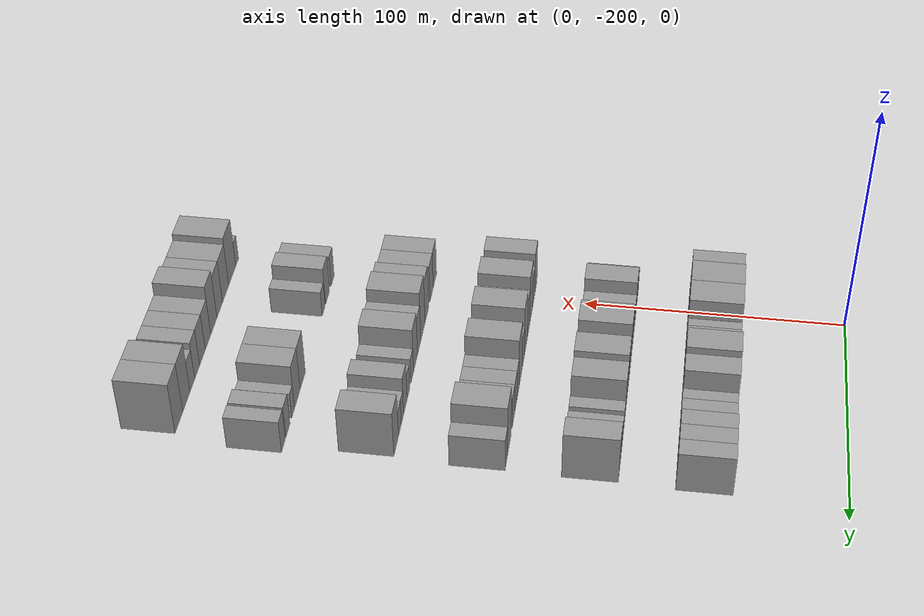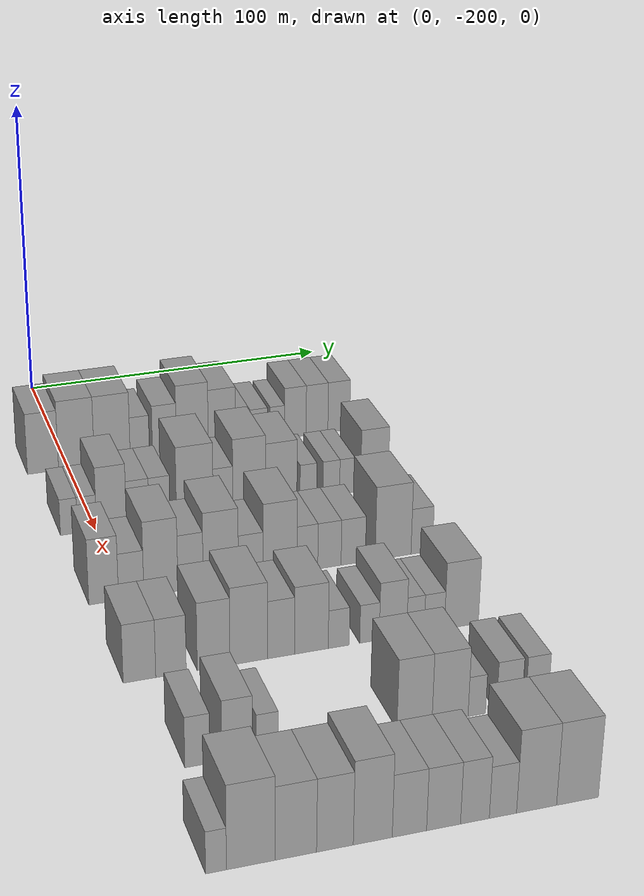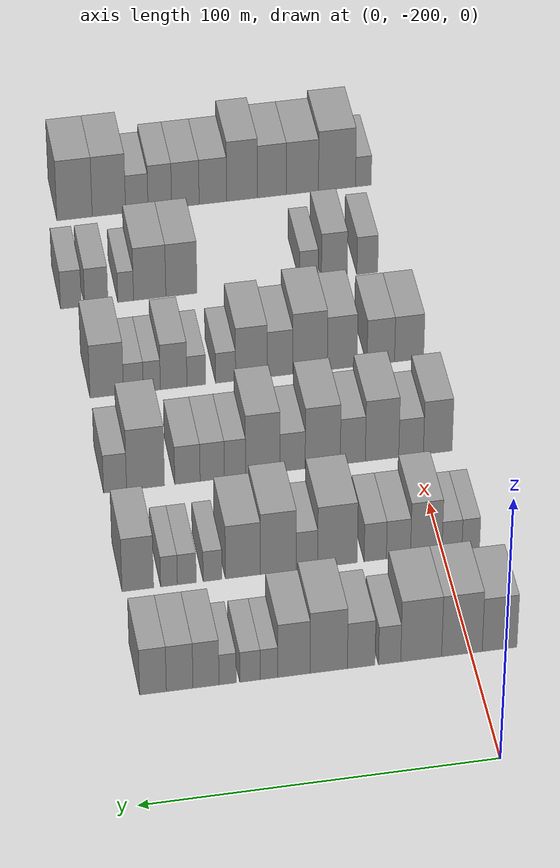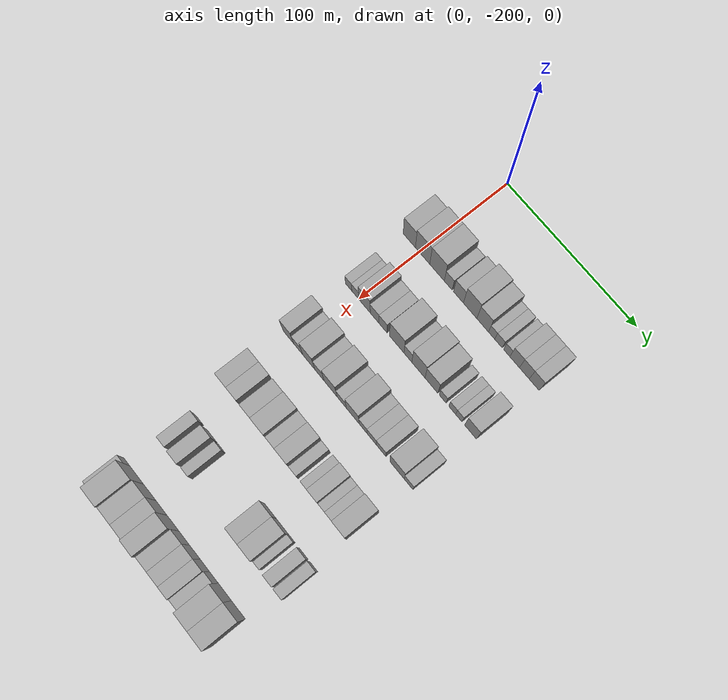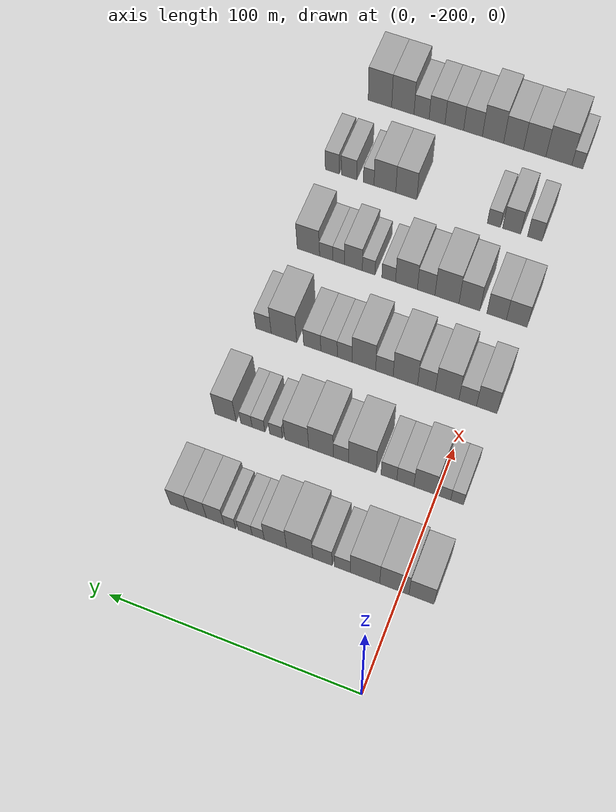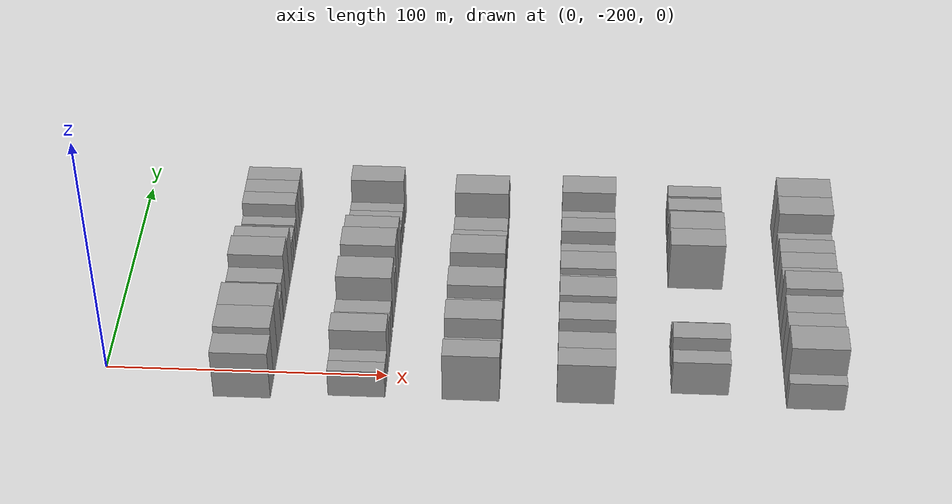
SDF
<sdf version="1.6">
 <world name="default">
  <model name="building_43">
   <static>1</static>
   <pose>50.0000 -208.1110 0 0.000000 0.000000 0.000000</pose>
   <link name="link">
    <pose>0 0 10.50 0 0 0</pose>
    <collision name="collision"><geometry><box><size>20.0000 9.9102 21.0000</size></box></geometry></collision>
    <visual name="visual">
     <cast_shadows>0</cast_shadows>
     <geometry><box><size>20.0000 9.9102 21.0000</size></box></geometry>
     <material>
      <script>
       <uri>model://grey_wall/materials/scripts</uri>
       <uri>model://grey_wall/materials/textures</uri>
       <name>vrc/grey_wall</name>
      </script>
     </material>
    </visual>
   </link>
  </model>
  <model name="building_44">
   <static>1</static>
   <pose>50.0000 -197.3954 0 0.000000 0.000000 0.000000</pose>
   <link name="link">
    <pose>0 0 12.00 0 0 0</pose>
    <collision name="collision"><geometry><box><size>20.0000 11.5211 24.0000</size></box></geometry></collision>
    <visual name="visual">
     <cast_shadows>0</cast_shadows>
     <geometry><box><size>20.0000 11.5211 24.0000</size></box></geometry>
     <material>
      <script>
       <uri>model://grey_wall/materials/scripts</uri>
       <uri>model://grey_wall/materials/textures</uri>
       <name>vrc/grey_wall</name>
      </script>
     </material>
    </visual>
   </link>
  </model>
  <model name="building_45">
   <static>1</static>
   <pose>50.0000 -185.8268 0 0.000000 0.000000 0.000000</pose>
   <link name="link">
    <pose>0 0 12.00 0 0 0</pose>
    <collision name="collision"><geometry><box><size>20.0000 11.6160 24.0000</size></box></geometry></collision>
    <visual name="visual">
     <cast_shadows>0</cast_shadows>
     <geometry><box><size>20.0000 11.6160 24.0000</size></box></geometry>
     <material>
      <script>
       <uri>model://grey_wall/materials/scripts</uri>
       <uri>model://grey_wall/materials/textures</uri>
       <name>vrc/grey_wall</name>
      </script>
     </material>
    </visual>
   </link>
  </model>
  <model name="building_46">
   <static>1</static>
   <pose>50.0000 -176.8797 0 0.000000 0.000000 0.000000</pose>
   <link name="link">
    <pose>0 0 7.50 0 0 0</pose>
    <collision name="collision"><geometry><box><size>20.0000 6.2783 15.0000</size></box></geometry></collision>
    <visual name="visual">
     <cast_shadows>0</cast_shadows>
     <geometry><box><size>20.0000 6.2783 15.0000</size></box></geometry>
     <material>
      <script>
       <uri>model://grey_wall/materials/scripts</uri>
       <uri>model://grey_wall/materials/textures</uri>
       <name>vrc/grey_wall</name>
      </script>
     </material>
    </visual>
   </link>
  </model>
  <model name="building_47">
   <static>1</static>
   <pose>50.0000 -168.8229 0 0.000000 0.000000 0.000000</pose>
   <link name="link">
    <pose>0 0 9.00 0 0 0</pose>
    <collision name="collision"><geometry><box><size>20.0000 7.8353 18.0000</size></box></geometry></collision>
    <visual name="visual">
     <cast_shadows>0</cast_shadows>
     <geometry><box><size>20.0000 7.8353 18.0000</size></box></geometry>
     <material>
      <script>
       <uri>model://grey_wall/materials/scripts</uri>
       <uri>model://grey_wall/materials/textures</uri>
       <name>vrc/grey_wall</name>
      </script>
     </material>
    </visual>
   </link>
  </model>
  <model name="building_48">
   <static>1</static>
   <pose>50.0000 -159.6403 0 0.000000 0.000000 0.000000</pose>
   <link name="link">
    <pose>0 0 12.00 0 0 0</pose>
    <collision name="collision"><geometry><box><size>20.0000 10.5299 24.0000</size></box></geometry></collision>
    <visual name="visual">
     <cast_shadows>0</cast_shadows>
     <geometry><box><size>20.0000 10.5299 24.0000</size></box></geometry>
     <material>
      <script>
       <uri>model://grey_wall/materials/scripts</uri>
       <uri>model://grey_wall/materials/textures</uri>
       <name>vrc/grey_wall</name>
      </script>
     </material>
    </visual>
   </link>
  </model>
  <model name="building_49">
   <static>1</static>
   <pose>50.0000 -149.8336 0 0.000000 0.000000 0.000000</pose>
   <link name="link">
    <pose>0 0 10.50 0 0 0</pose>
    <collision name="collision"><geometry><box><size>20.0000 9.0834 21.0000</size></box></geometry></collision>
    <visual name="visual">
     <cast_shadows>0</cast_shadows>
     <geometry><box><size>20.0000 9.0834 21.0000</size></box></geometry>
     <material>
      <script>
       <uri>model://grey_wall/materials/scripts</uri>
       <uri>model://grey_wall/materials/textures</uri>
       <name>vrc/grey_wall</name>
      </script>
     </material>
    </visual>
   </link>
  </model>
  <model name="building_50">
   <static>1</static>
   <pose>50.0000 -142.8377 0 0.000000 0.000000 0.000000</pose>
   <link name="link">
    <pose>0 0 6.00 0 0 0</pose>
    <collision name="collision"><geometry><box><size>20.0000 4.9084 12.0000</size></box></geometry></collision>
    <visual name="visual">
     <cast_shadows>0</cast_shadows>
     <geometry><box><size>20.0000 4.9084 12.0000</size></box></geometry>
     <material>
      <script>
       <uri>model://grey_wall/materials/scripts</uri>
       <uri>model://grey_wall/materials/textures</uri>
       <name>vrc/grey_wall</name>
      </script>
     </material>
    </visual>
   </link>
  </model>
  <model name="building_51">
   <static>1</static>
   <pose>50.0000 -137.5032 0 0.000000 0.000000 0.000000</pose>
   <link name="link">
    <pose>0 0 6.00 0 0 0</pose>
    <collision name="collision"><geometry><box><size>20.0000 5.7607 12.0000</size></box></geometry></collision>
    <visual name="visual">
     <cast_shadows>0</cast_shadows>
     <geometry><box><size>20.0000 5.7607 12.0000</size></box></geometry>
     <material>
      <script>
       <uri>model://grey_wall/materials/scripts</uri>
       <uri>model://grey_wall/materials/textures</uri>
       <name>vrc/grey_wall</name>
      </script>
     </material>
    </visual>
   </link>
  </model>
  <model name="building_52">
   <static>1</static>
   <pose>50.0000 -131.1997 0 0.000000 0.000000 0.000000</pose>
   <link name="link">
    <pose>0 0 6.00 0 0 0</pose>
    <collision name="collision"><geometry><box><size>20.0000 4.8462 12.0000</size></box></geometry></collision>
    <visual name="visual">
     <cast_shadows>0</cast_shadows>
     <geometry><box><size>20.0000 4.8462 12.0000</size></box></geometry>
     <material>
      <script>
       <uri>model://grey_wall/materials/scripts</uri>
       <uri>model://grey_wall/materials/textures</uri>
       <name>vrc/grey_wall</name>
      </script>
     </material>
    </visual>
   </link>
  </model>
  <model name="building_53">
   <static>1</static>
   <pose>50.0000 -125.1361 0 0.000000 0.000000 0.000000</pose>
   <link name="link">
    <pose>0 0 9.00 0 0 0</pose>
    <collision name="collision"><geometry><box><size>20.0000 7.2810 18.0000</size></box></geometry></collision>
    <visual name="visual">
     <cast_shadows>0</cast_shadows>
     <geometry><box><size>20.0000 7.2810 18.0000</size></box></geometry>
     <material>
      <script>
       <uri>model://grey_wall/materials/scripts</uri>
       <uri>model://grey_wall/materials/textures</uri>
       <name>vrc/grey_wall</name>
      </script>
     </material>
    </visual>
   </link>
  </model>
  <model name="building_54">
   <static>1</static>
   <pose>50.0000 -117.7696 0 0.000000 0.000000 0.000000</pose>
   <link name="link">
    <pose>0 0 9.00 0 0 0</pose>
    <collision name="collision"><geometry><box><size>20.0000 7.4519 18.0000</size></box></geometry></collision>
    <visual name="visual">
     <cast_shadows>0</cast_shadows>
     <geometry><box><size>20.0000 7.4519 18.0000</size></box></geometry>
     <material>
      <script>
       <uri>model://grey_wall/materials/scripts</uri>
       <uri>model://grey_wall/materials/textures</uri>
       <name>vrc/grey_wall</name>
      </script>
     </material>
    </visual>
   </link>
  </model>
  <model name="building_55">
   <static>1</static>
   <pose>50.0000 -110.3080 0 0.000000 0.000000 0.000000</pose>
   <link name="link">
    <pose>0 0 9.00 0 0 0</pose>
    <collision name="collision"><geometry><box><size>20.0000 7.4714 18.0000</size></box></geometry></collision>
    <visual name="visual">
     <cast_shadows>0</cast_shadows>
     <geometry><box><size>20.0000 7.4714 18.0000</size></box></geometry>
     <material>
      <script>
       <uri>model://grey_wall/materials/scripts</uri>
       <uri>model://grey_wall/materials/textures</uri>
       <name>vrc/grey_wall</name>
      </script>
     </material>
    </visual>
   </link>
  </model>
  <model name="building_187">
   <static>1</static>
   <pose>90.0000 -208.1421 0 0.000000 0.000000 0.000000</pose>
   <link name="link">
    <pose>0 0 6.00 0 0 0</pose>
    <collision name="collision"><geometry><box><size>20.0000 5.1441 12.0000</size></box></geometry></collision>
    <visual name="visual">
     <cast_shadows>0</cast_shadows>
     <geometry><box><size>20.0000 5.1441 12.0000</size></box></geometry>
     <material>
      <script>
       <uri>model://grey_wall/materials/scripts</uri>
       <uri>model://grey_wall/materials/textures</uri>
       <name>vrc/grey_wall</name>
      </script>
     </material>
    </visual>
   </link>
  </model>
  <model name="building_188">
   <static>1</static>
   <pose>90.0000 -202.6643 0 0.000000 0.000000 0.000000</pose>
   <link name="link">
    <pose>0 0 6.00 0 0 0</pose>
    <collision name="collision"><geometry><box><size>20.0000 5.8114 12.0000</size></box></geometry></collision>
    <visual name="visual">
     <cast_shadows>0</cast_shadows>
     <geometry><box><size>20.0000 5.8114 12.0000</size></box></geometry>
     <material>
      <script>
       <uri>model://grey_wall/materials/scripts</uri>
       <uri>model://grey_wall/materials/textures</uri>
       <name>vrc/grey_wall</name>
      </script>
     </material>
    </visual>
   </link>
  </model>
  <model name="building_189">
   <static>1</static>
   <pose>90.0000 -195.1871 0 0.000000 0.000000 0.000000</pose>
   <link name="link">
    <pose>0 0 10.50 0 0 0</pose>
    <collision name="collision"><geometry><box><size>20.0000 9.1430 21.0000</size></box></geometry></collision>
    <visual name="visual">
     <cast_shadows>0</cast_shadows>
     <geometry><box><size>20.0000 9.1430 21.0000</size></box></geometry>
     <material>
      <script>
       <uri>model://grey_wall/materials/scripts</uri>
       <uri>model://grey_wall/materials/textures</uri>
       <name>vrc/grey_wall</name>
      </script>
     </material>
    </visual>
   </link>
  </model>
  <model name="building_190">
   <static>1</static>
   <pose>90.0000 -187.1275 0 0.000000 0.000000 0.000000</pose>
   <link name="link">
    <pose>0 0 7.50 0 0 0</pose>
    <collision name="collision"><geometry><box><size>20.0000 6.9762 15.0000</size></box></geometry></collision>
    <visual name="visual">
     <cast_shadows>0</cast_shadows>
     <geometry><box><size>20.0000 6.9762 15.0000</size></box></geometry>
     <material>
      <script>
       <uri>model://grey_wall/materials/scripts</uri>
       <uri>model://grey_wall/materials/textures</uri>
       <name>vrc/grey_wall</name>
      </script>
     </material>
    </visual>
   </link>
  </model>
  <model name="building_191">
   <static>1</static>
   <pose>90.0000 -180.4109 0 0.000000 0.000000 0.000000</pose>
   <link name="link">
    <pose>0 0 7.50 0 0 0</pose>
    <collision name="collision"><geometry><box><size>20.0000 6.4570 15.0000</size></box></geometry></collision>
    <visual name="visual">
     <cast_shadows>0</cast_shadows>
     <geometry><box><size>20.0000 6.4570 15.0000</size></box></geometry>
     <material>
      <script>
       <uri>model://grey_wall/materials/scripts</uri>
       <uri>model://grey_wall/materials/textures</uri>
       <name>vrc/grey_wall</name>
      </script>
     </material>
    </visual>
   </link>
  </model>
  <model name="building_192">
   <static>1</static>
   <pose>90.0000 -169.4578 0 0.000000 0.000000 0.000000</pose>
   <link name="link">
    <pose>0 0 12.00 0 0 0</pose>
    <collision name="collision"><geometry><box><size>20.0000 11.4491 24.0000</size></box></geometry></collision>
    <visual name="visual">
     <cast_shadows>0</cast_shadows>
     <geometry><box><size>20.0000 11.4491 24.0000</size></box></geometry>
     <material>
      <script>
       <uri>model://grey_wall/materials/scripts</uri>
       <uri>model://grey_wall/materials/textures</uri>
       <name>vrc/grey_wall</name>
      </script>
     </material>
    </visual>
   </link>
  </model>
  <model name="building_193">
   <static>1</static>
   <pose>90.0000 -160.6461 0 0.000000 0.000000 0.000000</pose>
   <link name="link">
    <pose>0 0 7.50 0 0 0</pose>
    <collision name="collision"><geometry><box><size>20.0000 6.1744 15.0000</size></box></geometry></collision>
    <visual name="visual">
     <cast_shadows>0</cast_shadows>
     <geometry><box><size>20.0000 6.1744 15.0000</size></box></geometry>
     <material>
      <script>
       <uri>model://grey_wall/materials/scripts</uri>
       <uri>model://grey_wall/materials/textures</uri>
       <name>vrc/grey_wall</name>
      </script>
     </material>
    </visual>
   </link>
  </model>
  <model name="building_194">
   <static>1</static>
   <pose>90.0000 -152.4023 0 0.000000 0.000000 0.000000</pose>
   <link name="link">
    <pose>0 0 12.00 0 0 0</pose>
    <collision name="collision"><geometry><box><size>20.0000 10.3132 24.0000</size></box></geometry></collision>
    <visual name="visual">
     <cast_shadows>0</cast_shadows>
     <geometry><box><size>20.0000 10.3132 24.0000</size></box></geometry>
     <material>
      <script>
       <uri>model://grey_wall/materials/scripts</uri>
       <uri>model://grey_wall/materials/textures</uri>
       <name>vrc/grey_wall</name>
      </script>
     </material>
    </visual>
   </link>
  </model>
  <model name="building_195">
   <static>1</static>
   <pose>90.0000 -142.2316 0 0.000000 0.000000 0.000000</pose>
   <link name="link">
    <pose>0 0 10.50 0 0 0</pose>
    <collision name="collision"><geometry><box><size>20.0000 10.0282 21.0000</size></box></geometry></collision>
    <visual name="visual">
     <cast_shadows>0</cast_shadows>
     <geometry><box><size>20.0000 10.0282 21.0000</size></box></geometry>
     <material>
      <script>
       <uri>model://grey_wall/materials/scripts</uri>
       <uri>model://grey_wall/materials/textures</uri>
       <name>vrc/grey_wall</name>
      </script>
     </material>
    </visual>
   </link>
  </model>
  <model name="building_196">
   <static>1</static>
   <pose>90.0000 -133.5268 0 0.000000 0.000000 0.000000</pose>
   <link name="link">
    <pose>0 0 6.00 0 0 0</pose>
    <collision name="collision"><geometry><box><size>20.0000 5.3814 12.0000</size></box></geometry></collision>
    <visual name="visual">
     <cast_shadows>0</cast_shadows>
     <geometry><box><size>20.0000 5.3814 12.0000</size></box></geometry>
     <material>
      <script>
       <uri>model://grey_wall/materials/scripts</uri>
       <uri>model://grey_wall/materials/textures</uri>
       <name>vrc/grey_wall</name>
      </script>
     </material>
    </visual>
   </link>
  </model>
  <model name="building_197">
   <static>1</static>
   <pose>90.0000 -126.1355 0 0.000000 0.000000 0.000000</pose>
   <link name="link">
    <pose>0 0 6.00 0 0 0</pose>
    <collision name="collision"><geometry><box><size>20.0000 5.4012 12.0000</size></box></geometry></collision>
    <visual name="visual">
     <cast_shadows>0</cast_shadows>
     <geometry><box><size>20.0000 5.4012 12.0000</size></box></geometry>
     <material>
      <script>
       <uri>model://grey_wall/materials/scripts</uri>
       <uri>model://grey_wall/materials/textures</uri>
       <name>vrc/grey_wall</name>
      </script>
     </material>
    </visual>
   </link>
  </model>
  <model name="building_198">
   <static>1</static>
   <pose>90.0000 -121.0316 0 0.000000 0.000000 0.000000</pose>
   <link name="link">
    <pose>0 0 6.00 0 0 0</pose>
    <collision name="collision"><geometry><box><size>20.0000 4.8067 12.0000</size></box></geometry></collision>
    <visual name="visual">
     <cast_shadows>0</cast_shadows>
     <geometry><box><size>20.0000 4.8067 12.0000</size></box></geometry>
     <material>
      <script>
       <uri>model://grey_wall/materials/scripts</uri>
       <uri>model://grey_wall/materials/textures</uri>
       <name>vrc/grey_wall</name>
      </script>
     </material>
    </visual>
   </link>
  </model>
  <model name="building_199">
   <static>1</static>
   <pose>90.0000 -112.1156 0 0.000000 0.000000 0.000000</pose>
   <link name="link">
    <pose>0 0 10.50 0 0 0</pose>
    <collision name="collision"><geometry><box><size>20.0000 9.0252 21.0000</size></box></geometry></collision>
    <visual name="visual">
     <cast_shadows>0</cast_shadows>
     <geometry><box><size>20.0000 9.0252 21.0000</size></box></geometry>
     <material>
      <script>
       <uri>model://grey_wall/materials/scripts</uri>
       <uri>model://grey_wall/materials/textures</uri>
       <name>vrc/grey_wall</name>
      </script>
     </material>
    </visual>
   </link>
  </model>
  <model name="building_324">
   <static>1</static>
   <pose>130.0000 -206.5401 0 0.000000 0.000000 0.000000</pose>
   <link name="link">
    <pose>0 0 10.50 0 0 0</pose>
    <collision name="collision"><geometry><box><size>20.0000 8.5243 21.0000</size></box></geometry></collision>
    <visual name="visual">
     <cast_shadows>0</cast_shadows>
     <geometry><box><size>20.0000 8.5243 21.0000</size></box></geometry>
     <material>
      <script>
       <uri>model://grey_wall/materials/scripts</uri>
       <uri>model://grey_wall/materials/textures</uri>
       <name>vrc/grey_wall</name>
      </script>
     </material>
    </visual>
   </link>
  </model>
  <model name="building_325">
   <static>1</static>
   <pose>130.0000 -198.6207 0 0.000000 0.000000 0.000000</pose>
   <link name="link">
    <pose>0 0 7.50 0 0 0</pose>
    <collision name="collision"><geometry><box><size>20.0000 7.3146 15.0000</size></box></geometry></collision>
    <visual name="visual">
     <cast_shadows>0</cast_shadows>
     <geometry><box><size>20.0000 7.3146 15.0000</size></box></geometry>
     <material>
      <script>
       <uri>model://grey_wall/materials/scripts</uri>
       <uri>model://grey_wall/materials/textures</uri>
       <name>vrc/grey_wall</name>
      </script>
     </material>
    </visual>
   </link>
  </model>
  <model name="building_326">
   <static>1</static>
   <pose>130.0000 -190.0081 0 0.000000 0.000000 0.000000</pose>
   <link name="link">
    <pose>0 0 12.00 0 0 0</pose>
    <collision name="collision"><geometry><box><size>20.0000 9.9106 24.0000</size></box></geometry></collision>
    <visual name="visual">
     <cast_shadows>0</cast_shadows>
     <geometry><box><size>20.0000 9.9106 24.0000</size></box></geometry>
     <material>
      <script>
       <uri>model://grey_wall/materials/scripts</uri>
       <uri>model://grey_wall/materials/textures</uri>
       <name>vrc/grey_wall</name>
      </script>
     </material>
    </visual>
   </link>
  </model>
  <model name="building_327">
   <static>1</static>
   <pose>130.0000 -181.3514 0 0.000000 0.000000 0.000000</pose>
   <link name="link">
    <pose>0 0 9.00 0 0 0</pose>
    <collision name="collision"><geometry><box><size>20.0000 7.4029 18.0000</size></box></geometry></collision>
    <visual name="visual">
     <cast_shadows>0</cast_shadows>
     <geometry><box><size>20.0000 7.4029 18.0000</size></box></geometry>
     <material>
      <script>
       <uri>model://grey_wall/materials/scripts</uri>
       <uri>model://grey_wall/materials/textures</uri>
       <name>vrc/grey_wall</name>
      </script>
     </material>
    </visual>
   </link>
  </model>
  <model name="building_328">
   <static>1</static>
   <pose>130.0000 -172.4671 0 0.000000 0.000000 0.000000</pose>
   <link name="link">
    <pose>0 0 12.00 0 0 0</pose>
    <collision name="collision"><geometry><box><size>20.0000 10.3655 24.0000</size></box></geometry></collision>
    <visual name="visual">
     <cast_shadows>0</cast_shadows>
     <geometry><box><size>20.0000 10.3655 24.0000</size></box></geometry>
     <material>
      <script>
       <uri>model://grey_wall/materials/scripts</uri>
       <uri>model://grey_wall/materials/textures</uri>
       <name>vrc/grey_wall</name>
      </script>
     </material>
    </visual>
   </link>
  </model>
  <model name="building_329">
   <static>1</static>
   <pose>130.0000 -163.5837 0 0.000000 0.000000 0.000000</pose>
   <link name="link">
    <pose>0 0 7.50 0 0 0</pose>
    <collision name="collision"><geometry><box><size>20.0000 7.4013 15.0000</size></box></geometry></collision>
    <visual name="visual">
     <cast_shadows>0</cast_shadows>
     <geometry><box><size>20.0000 7.4013 15.0000</size></box></geometry>
     <material>
      <script>
       <uri>model://grey_wall/materials/scripts</uri>
       <uri>model://grey_wall/materials/textures</uri>
       <name>vrc/grey_wall</name>
      </script>
     </material>
    </visual>
   </link>
  </model>
  <model name="building_330">
   <static>1</static>
   <pose>130.0000 -154.8156 0 0.000000 0.000000 0.000000</pose>
   <link name="link">
    <pose>0 0 12.00 0 0 0</pose>
    <collision name="collision"><geometry><box><size>20.0000 10.1349 24.0000</size></box></geometry></collision>
    <visual name="visual">
     <cast_shadows>0</cast_shadows>
     <geometry><box><size>20.0000 10.1349 24.0000</size></box></geometry>
     <material>
      <script>
       <uri>model://grey_wall/materials/scripts</uri>
       <uri>model://grey_wall/materials/textures</uri>
       <name>vrc/grey_wall</name>
      </script>
     </material>
    </visual>
   </link>
  </model>
  <model name="building_331">
   <static>1</static>
   <pose>130.0000 -146.6207 0 0.000000 0.000000 0.000000</pose>
   <link name="link">
    <pose>0 0 7.50 0 0 0</pose>
    <collision name="collision"><geometry><box><size>20.0000 6.2551 15.0000</size></box></geometry></collision>
    <visual name="visual">
     <cast_shadows>0</cast_shadows>
     <geometry><box><size>20.0000 6.2551 15.0000</size></box></geometry>
     <material>
      <script>
       <uri>model://grey_wall/materials/scripts</uri>
       <uri>model://grey_wall/materials/textures</uri>
       <name>vrc/grey_wall</name>
      </script>
     </material>
    </visual>
   </link>
  </model>
  <model name="building_332">
   <static>1</static>
   <pose>130.0000 -139.9472 0 0.000000 0.000000 0.000000</pose>
   <link name="link">
    <pose>0 0 7.50 0 0 0</pose>
    <collision name="collision"><geometry><box><size>20.0000 7.0919 15.0000</size></box></geometry></collision>
    <visual name="visual">
     <cast_shadows>0</cast_shadows>
     <geometry><box><size>20.0000 7.0919 15.0000</size></box></geometry>
     <material>
      <script>
       <uri>model://grey_wall/materials/scripts</uri>
       <uri>model://grey_wall/materials/textures</uri>
       <name>vrc/grey_wall</name>
      </script>
     </material>
    </visual>
   </link>
  </model>
  <model name="building_333">
   <static>1</static>
   <pose>130.0000 -132.6904 0 0.000000 0.000000 0.000000</pose>
   <link name="link">
    <pose>0 0 7.50 0 0 0</pose>
    <collision name="collision"><geometry><box><size>20.0000 7.4218 15.0000</size></box></geometry></collision>
    <visual name="visual">
     <cast_shadows>0</cast_shadows>
     <geometry><box><size>20.0000 7.4218 15.0000</size></box></geometry>
     <material>
      <script>
       <uri>model://grey_wall/materials/scripts</uri>
       <uri>model://grey_wall/materials/textures</uri>
       <name>vrc/grey_wall</name>
      </script>
     </material>
    </visual>
   </link>
  </model>
  <model name="building_334">
   <static>1</static>
   <pose>130.0000 -120.4313 0 0.000000 0.000000 0.000000</pose>
   <link name="link">
    <pose>0 0 12.00 0 0 0</pose>
    <collision name="collision"><geometry><box><size>20.0000 11.0963 24.0000</size></box></geometry></collision>
    <visual name="visual">
     <cast_shadows>0</cast_shadows>
     <geometry><box><size>20.0000 11.0963 24.0000</size></box></geometry>
     <material>
      <script>
       <uri>model://grey_wall/materials/scripts</uri>
       <uri>model://grey_wall/materials/textures</uri>
       <name>vrc/grey_wall</name>
      </script>
     </material>
    </visual>
   </link>
  </model>
  <model name="building_335">
   <static>1</static>
   <pose>130.0000 -111.5220 0 0.000000 0.000000 0.000000</pose>
   <link name="link">
    <pose>0 0 7.50 0 0 0</pose>
    <collision name="collision"><geometry><box><size>20.0000 6.7223 15.0000</size></box></geometry></collision>
    <visual name="visual">
     <cast_shadows>0</cast_shadows>
     <geometry><box><size>20.0000 6.7223 15.0000</size></box></geometry>
     <material>
      <script>
       <uri>model://grey_wall/materials/scripts</uri>
       <uri>model://grey_wall/materials/textures</uri>
       <name>vrc/grey_wall</name>
      </script>
     </material>
    </visual>
   </link>
  </model>
  <model name="building_463">
   <static>1</static>
   <pose>170.0000 -205.8518 0 0.000000 0.000000 0.000000</pose>
   <link name="link">
    <pose>0 0 9.00 0 0 0</pose>
    <collision name="collision"><geometry><box><size>20.0000 8.8298 18.0000</size></box></geometry></collision>
    <visual name="visual">
     <cast_shadows>0</cast_shadows>
     <geometry><box><size>20.0000 8.8298 18.0000</size></box></geometry>
     <material>
      <script>
       <uri>model://grey_wall/materials/scripts</uri>
       <uri>model://grey_wall/materials/textures</uri>
       <name>vrc/grey_wall</name>
      </script>
     </material>
    </visual>
   </link>
  </model>
  <model name="building_464">
   <static>1</static>
   <pose>170.0000 -197.2720 0 0.000000 0.000000 0.000000</pose>
   <link name="link">
    <pose>0 0 9.00 0 0 0</pose>
    <collision name="collision"><geometry><box><size>20.0000 8.3299 18.0000</size></box></geometry></collision>
    <visual name="visual">
     <cast_shadows>0</cast_shadows>
     <geometry><box><size>20.0000 8.3299 18.0000</size></box></geometry>
     <material>
      <script>
       <uri>model://grey_wall/materials/scripts</uri>
       <uri>model://grey_wall/materials/textures</uri>
       <name>vrc/grey_wall</name>
      </script>
     </material>
    </visual>
   </link>
  </model>
  <model name="building_465">
   <static>1</static>
   <pose>170.0000 -185.5988 0 0.000000 0.000000 0.000000</pose>
   <link name="link">
    <pose>0 0 10.50 0 0 0</pose>
    <collision name="collision"><geometry><box><size>20.0000 9.0165 21.0000</size></box></geometry></collision>
    <visual name="visual">
     <cast_shadows>0</cast_shadows>
     <geometry><box><size>20.0000 9.0165 21.0000</size></box></geometry>
     <material>
      <script>
       <uri>model://grey_wall/materials/scripts</uri>
       <uri>model://grey_wall/materials/textures</uri>
       <name>vrc/grey_wall</name>
      </script>
     </material>
    </visual>
   </link>
  </model>
  <model name="building_466">
   <static>1</static>
   <pose>170.0000 -175.8891 0 0.000000 0.000000 0.000000</pose>
   <link name="link">
    <pose>0 0 12.00 0 0 0</pose>
    <collision name="collision"><geometry><box><size>20.0000 10.4028 24.0000</size></box></geometry></collision>
    <visual name="visual">
     <cast_shadows>0</cast_shadows>
     <geometry><box><size>20.0000 10.4028 24.0000</size></box></geometry>
     <material>
      <script>
       <uri>model://grey_wall/materials/scripts</uri>
       <uri>model://grey_wall/materials/textures</uri>
       <name>vrc/grey_wall</name>
      </script>
     </material>
    </visual>
   </link>
  </model>
  <model name="building_467">
   <static>1</static>
   <pose>170.0000 -166.8759 0 0.000000 0.000000 0.000000</pose>
   <link name="link">
    <pose>0 0 9.00 0 0 0</pose>
    <collision name="collision"><geometry><box><size>20.0000 7.6237 18.0000</size></box></geometry></collision>
    <visual name="visual">
     <cast_shadows>0</cast_shadows>
     <geometry><box><size>20.0000 7.6237 18.0000</size></box></geometry>
     <material>
      <script>
       <uri>model://grey_wall/materials/scripts</uri>
       <uri>model://grey_wall/materials/textures</uri>
       <name>vrc/grey_wall</name>
      </script>
     </material>
    </visual>
   </link>
  </model>
  <model name="building_468">
   <static>1</static>
   <pose>170.0000 -158.2862 0 0.000000 0.000000 0.000000</pose>
   <link name="link">
    <pose>0 0 10.50 0 0 0</pose>
    <collision name="collision"><geometry><box><size>20.0000 9.5557 21.0000</size></box></geometry></collision>
    <visual name="visual">
     <cast_shadows>0</cast_shadows>
     <geometry><box><size>20.0000 9.5557 21.0000</size></box></geometry>
     <material>
      <script>
       <uri>model://grey_wall/materials/scripts</uri>
       <uri>model://grey_wall/materials/textures</uri>
       <name>vrc/grey_wall</name>
      </script>
     </material>
    </visual>
   </link>
  </model>
  <model name="building_469">
   <static>1</static>
   <pose>170.0000 -150.5120 0 0.000000 0.000000 0.000000</pose>
   <link name="link">
    <pose>0 0 6.00 0 0 0</pose>
    <collision name="collision"><geometry><box><size>20.0000 5.9926 12.0000</size></box></geometry></collision>
    <visual name="visual">
     <cast_shadows>0</cast_shadows>
     <geometry><box><size>20.0000 5.9926 12.0000</size></box></geometry>
     <material>
      <script>
       <uri>model://grey_wall/materials/scripts</uri>
       <uri>model://grey_wall/materials/textures</uri>
       <name>vrc/grey_wall</name>
      </script>
     </material>
    </visual>
   </link>
  </model>
  <model name="building_470">
   <static>1</static>
   <pose>170.0000 -141.7155 0 0.000000 0.000000 0.000000</pose>
   <link name="link">
    <pose>0 0 6.00 0 0 0</pose>
    <collision name="collision"><geometry><box><size>20.0000 5.6005 12.0000</size></box></geometry></collision>
    <visual name="visual">
     <cast_shadows>0</cast_shadows>
     <geometry><box><size>20.0000 5.6005 12.0000</size></box></geometry>
     <material>
      <script>
       <uri>model://grey_wall/materials/scripts</uri>
       <uri>model://grey_wall/materials/textures</uri>
       <name>vrc/grey_wall</name>
      </script>
     </material>
    </visual>
   </link>
  </model>
  <model name="building_471">
   <static>1</static>
   <pose>170.0000 -134.9388 0 0.000000 0.000000 0.000000</pose>
   <link name="link">
    <pose>0 0 9.00 0 0 0</pose>
    <collision name="collision"><geometry><box><size>20.0000 7.9529 18.0000</size></box></geometry></collision>
    <visual name="visual">
     <cast_shadows>0</cast_shadows>
     <geometry><box><size>20.0000 7.9529 18.0000</size></box></geometry>
     <material>
      <script>
       <uri>model://grey_wall/materials/scripts</uri>
       <uri>model://grey_wall/materials/textures</uri>
       <name>vrc/grey_wall</name>
      </script>
     </material>
    </visual>
   </link>
  </model>
  <model name="building_472">
   <static>1</static>
   <pose>170.0000 -128.4115 0 0.000000 0.000000 0.000000</pose>
   <link name="link">
    <pose>0 0 6.00 0 0 0</pose>
    <collision name="collision"><geometry><box><size>20.0000 5.1018 12.0000</size></box></geometry></collision>
    <visual name="visual">
     <cast_shadows>0</cast_shadows>
     <geometry><box><size>20.0000 5.1018 12.0000</size></box></geometry>
     <material>
      <script>
       <uri>model://grey_wall/materials/scripts</uri>
       <uri>model://grey_wall/materials/textures</uri>
       <name>vrc/grey_wall</name>
      </script>
     </material>
    </visual>
   </link>
  </model>
  <model name="building_473">
   <static>1</static>
   <pose>170.0000 -122.9006 0 0.000000 0.000000 0.000000</pose>
   <link name="link">
    <pose>0 0 6.00 0 0 0</pose>
    <collision name="collision"><geometry><box><size>20.0000 5.9199 12.0000</size></box></geometry></collision>
    <visual name="visual">
     <cast_shadows>0</cast_shadows>
     <geometry><box><size>20.0000 5.9199 12.0000</size></box></geometry>
     <material>
      <script>
       <uri>model://grey_wall/materials/scripts</uri>
       <uri>model://grey_wall/materials/textures</uri>
       <name>vrc/grey_wall</name>
      </script>
     </material>
    </visual>
   </link>
  </model>
  <model name="building_474">
   <static>1</static>
   <pose>170.0000 -114.9412 0 0.000000 0.000000 0.000000</pose>
   <link name="link">
    <pose>0 0 10.50 0 0 0</pose>
    <collision name="collision"><geometry><box><size>20.0000 9.9989 21.0000</size></box></geometry></collision>
    <visual name="visual">
     <cast_shadows>0</cast_shadows>
     <geometry><box><size>20.0000 9.9989 21.0000</size></box></geometry>
     <material>
      <script>
       <uri>model://grey_wall/materials/scripts</uri>
       <uri>model://grey_wall/materials/textures</uri>
       <name>vrc/grey_wall</name>
      </script>
     </material>
    </visual>
   </link>
  </model>
  <model name="building_605">
   <static>1</static>
   <pose>210.0000 -200.7367 0 0.000000 0.000000 0.000000</pose>
   <link name="link">
    <pose>0 0 7.50 0 0 0</pose>
    <collision name="collision"><geometry><box><size>20.0000 6.4362 15.0000</size></box></geometry></collision>
    <visual name="visual">
     <cast_shadows>0</cast_shadows>
     <geometry><box><size>20.0000 6.4362 15.0000</size></box></geometry>
     <material>
      <script>
       <uri>model://grey_wall/materials/scripts</uri>
       <uri>model://grey_wall/materials/textures</uri>
       <name>vrc/grey_wall</name>
      </script>
     </material>
    </visual>
   </link>
  </model>
  <model name="building_606">
   <static>1</static>
   <pose>210.0000 -190.5467 0 0.000000 0.000000 0.000000</pose>
   <link name="link">
    <pose>0 0 9.00 0 0 0</pose>
    <collision name="collision"><geometry><box><size>20.0000 7.9437 18.0000</size></box></geometry></collision>
    <visual name="visual">
     <cast_shadows>0</cast_shadows>
     <geometry><box><size>20.0000 7.9437 18.0000</size></box></geometry>
     <material>
      <script>
       <uri>model://grey_wall/materials/scripts</uri>
       <uri>model://grey_wall/materials/textures</uri>
       <name>vrc/grey_wall</name>
      </script>
     </material>
    </visual>
   </link>
  </model>
  <model name="building_607">
   <static>1</static>
   <pose>210.0000 -182.7085 0 0.000000 0.000000 0.000000</pose>
   <link name="link">
    <pose>0 0 6.00 0 0 0</pose>
    <collision name="collision"><geometry><box><size>20.0000 5.7328 12.0000</size></box></geometry></collision>
    <visual name="visual">
     <cast_shadows>0</cast_shadows>
     <geometry><box><size>20.0000 5.7328 12.0000</size></box></geometry>
     <material>
      <script>
       <uri>model://grey_wall/materials/scripts</uri>
       <uri>model://grey_wall/materials/textures</uri>
       <name>vrc/grey_wall</name>
      </script>
     </material>
    </visual>
   </link>
  </model>
  <model name="building_608">
   <static>1</static>
   <pose>210.0000 -143.5787 0 0.000000 0.000000 0.000000</pose>
   <link name="link">
    <pose>0 0 10.50 0 0 0</pose>
    <collision name="collision"><geometry><box><size>20.0000 9.5090 21.0000</size></box></geometry></collision>
    <visual name="visual">
     <cast_shadows>0</cast_shadows>
     <geometry><box><size>20.0000 9.5090 21.0000</size></box></geometry>
     <material>
      <script>
       <uri>model://grey_wall/materials/scripts</uri>
       <uri>model://grey_wall/materials/textures</uri>
       <name>vrc/grey_wall</name>
      </script>
     </material>
    </visual>
   </link>
  </model>
  <model name="building_609">
   <static>1</static>
   <pose>210.0000 -133.8915 0 0.000000 0.000000 0.000000</pose>
   <link name="link">
    <pose>0 0 10.50 0 0 0</pose>
    <collision name="collision"><geometry><box><size>20.0000 9.8653 21.0000</size></box></geometry></collision>
    <visual name="visual">
     <cast_shadows>0</cast_shadows>
     <geometry><box><size>20.0000 9.8653 21.0000</size></box></geometry>
     <material>
      <script>
       <uri>model://grey_wall/materials/scripts</uri>
       <uri>model://grey_wall/materials/textures</uri>
       <name>vrc/grey_wall</name>
      </script>
     </material>
    </visual>
   </link>
  </model>
  <model name="building_610">
   <static>1</static>
   <pose>210.0000 -126.5502 0 0.000000 0.000000 0.000000</pose>
   <link name="link">
    <pose>0 0 6.00 0 0 0</pose>
    <collision name="collision"><geometry><box><size>20.0000 4.8173 12.0000</size></box></geometry></collision>
    <visual name="visual">
     <cast_shadows>0</cast_shadows>
     <geometry><box><size>20.0000 4.8173 12.0000</size></box></geometry>
     <material>
      <script>
       <uri>model://grey_wall/materials/scripts</uri>
       <uri>model://grey_wall/materials/textures</uri>
       <name>vrc/grey_wall</name>
      </script>
     </material>
    </visual>
   </link>
  </model>
  <model name="building_611">
   <static>1</static>
   <pose>210.0000 -117.5949 0 0.000000 0.000000 0.000000</pose>
   <link name="link">
    <pose>0 0 7.50 0 0 0</pose>
    <collision name="collision"><geometry><box><size>20.0000 7.0931 15.0000</size></box></geometry></collision>
    <visual name="visual">
     <cast_shadows>0</cast_shadows>
     <geometry><box><size>20.0000 7.0931 15.0000</size></box></geometry>
     <material>
      <script>
       <uri>model://grey_wall/materials/scripts</uri>
       <uri>model://grey_wall/materials/textures</uri>
       <name>vrc/grey_wall</name>
      </script>
     </material>
    </visual>
   </link>
  </model>
  <model name="building_612">
   <static>1</static>
   <pose>210.0000 -109.8763 0 0.000000 0.000000 0.000000</pose>
   <link name="link">
    <pose>0 0 7.50 0 0 0</pose>
    <collision name="collision"><geometry><box><size>20.0000 6.3442 15.0000</size></box></geometry></collision>
    <visual name="visual">
     <cast_shadows>0</cast_shadows>
     <geometry><box><size>20.0000 6.3442 15.0000</size></box></geometry>
     <material>
      <script>
       <uri>model://grey_wall/materials/scripts</uri>
       <uri>model://grey_wall/materials/textures</uri>
       <name>vrc/grey_wall</name>
      </script>
     </material>
    </visual>
   </link>
  </model>
  <model name="building_735">
   <static>1</static>
   <pose>250.0000 -207.0255 0 0.000000 0.000000 0.000000</pose>
   <link name="link">
    <pose>0 0 6.00 0 0 0</pose>
    <collision name="collision"><geometry><box><size>20.0000 4.9684 12.0000</size></box></geometry></collision>
    <visual name="visual">
     <cast_shadows>0</cast_shadows>
     <geometry><box><size>20.0000 4.9684 12.0000</size></box></geometry>
     <material>
      <script>
       <uri>model://grey_wall/materials/scripts</uri>
       <uri>model://grey_wall/materials/textures</uri>
       <name>vrc/grey_wall</name>
      </script>
     </material>
    </visual>
   </link>
  </model>
  <model name="building_736">
   <static>1</static>
   <pose>250.0000 -198.6995 0 0.000000 0.000000 0.000000</pose>
   <link name="link">
    <pose>0 0 12.00 0 0 0</pose>
    <collision name="collision"><geometry><box><size>20.0000 11.6835 24.0000</size></box></geometry></collision>
    <visual name="visual">
     <cast_shadows>0</cast_shadows>
     <geometry><box><size>20.0000 11.6835 24.0000</size></box></geometry>
     <material>
      <script>
       <uri>model://grey_wall/materials/scripts</uri>
       <uri>model://grey_wall/materials/textures</uri>
       <name>vrc/grey_wall</name>
      </script>
     </material>
    </visual>
   </link>
  </model>
  <model name="building_737">
   <static>1</static>
   <pose>250.0000 -187.8046 0 0.000000 0.000000 0.000000</pose>
   <link name="link">
    <pose>0 0 10.50 0 0 0</pose>
    <collision name="collision"><geometry><box><size>20.0000 10.1063 21.0000</size></box></geometry></collision>
    <visual name="visual">
     <cast_shadows>0</cast_shadows>
     <geometry><box><size>20.0000 10.1063 21.0000</size></box></geometry>
     <material>
      <script>
       <uri>model://grey_wall/materials/scripts</uri>
       <uri>model://grey_wall/materials/textures</uri>
       <name>vrc/grey_wall</name>
      </script>
     </material>
    </visual>
   </link>
  </model>
  <model name="building_738">
   <static>1</static>
   <pose>250.0000 -178.2363 0 0.000000 0.000000 0.000000</pose>
   <link name="link">
    <pose>0 0 10.50 0 0 0</pose>
    <collision name="collision"><geometry><box><size>20.0000 9.0302 21.0000</size></box></geometry></collision>
    <visual name="visual">
     <cast_shadows>0</cast_shadows>
     <geometry><box><size>20.0000 9.0302 21.0000</size></box></geometry>
     <material>
      <script>
       <uri>model://grey_wall/materials/scripts</uri>
       <uri>model://grey_wall/materials/textures</uri>
       <name>vrc/grey_wall</name>
      </script>
     </material>
    </visual>
   </link>
  </model>
  <model name="building_739">
   <static>1</static>
   <pose>250.0000 -168.8832 0 0.000000 0.000000 0.000000</pose>
   <link name="link">
    <pose>0 0 12.00 0 0 0</pose>
    <collision name="collision"><geometry><box><size>20.0000 9.6761 24.0000</size></box></geometry></collision>
    <visual name="visual">
     <cast_shadows>0</cast_shadows>
     <geometry><box><size>20.0000 9.6761 24.0000</size></box></geometry>
     <material>
      <script>
       <uri>model://grey_wall/materials/scripts</uri>
       <uri>model://grey_wall/materials/textures</uri>
       <name>vrc/grey_wall</name>
      </script>
     </material>
    </visual>
   </link>
  </model>
  <model name="building_740">
   <static>1</static>
   <pose>250.0000 -159.7382 0 0.000000 0.000000 0.000000</pose>
   <link name="link">
    <pose>0 0 9.00 0 0 0</pose>
    <collision name="collision"><geometry><box><size>20.0000 8.6139 18.0000</size></box></geometry></collision>
    <visual name="visual">
     <cast_shadows>0</cast_shadows>
     <geometry><box><size>20.0000 8.6139 18.0000</size></box></geometry>
     <material>
      <script>
       <uri>model://grey_wall/materials/scripts</uri>
       <uri>model://grey_wall/materials/textures</uri>
       <name>vrc/grey_wall</name>
      </script>
     </material>
    </visual>
   </link>
  </model>
  <model name="building_741">
   <static>1</static>
   <pose>250.0000 -151.1400 0 0.000000 0.000000 0.000000</pose>
   <link name="link">
    <pose>0 0 9.00 0 0 0</pose>
    <collision name="collision"><geometry><box><size>20.0000 8.5825 18.0000</size></box></geometry></collision>
    <visual name="visual">
     <cast_shadows>0</cast_shadows>
     <geometry><box><size>20.0000 8.5825 18.0000</size></box></geometry>
     <material>
      <script>
       <uri>model://grey_wall/materials/scripts</uri>
       <uri>model://grey_wall/materials/textures</uri>
       <name>vrc/grey_wall</name>
      </script>
     </material>
    </visual>
   </link>
  </model>
  <model name="building_742">
   <static>1</static>
   <pose>250.0000 -143.1700 0 0.000000 0.000000 0.000000</pose>
   <link name="link">
    <pose>0 0 9.00 0 0 0</pose>
    <collision name="collision"><geometry><box><size>20.0000 7.3574 18.0000</size></box></geometry></collision>
    <visual name="visual">
     <cast_shadows>0</cast_shadows>
     <geometry><box><size>20.0000 7.3574 18.0000</size></box></geometry>
     <material>
      <script>
       <uri>model://grey_wall/materials/scripts</uri>
       <uri>model://grey_wall/materials/textures</uri>
       <name>vrc/grey_wall</name>
      </script>
     </material>
    </visual>
   </link>
  </model>
  <model name="building_743">
   <static>1</static>
   <pose>250.0000 -135.9929 0 0.000000 0.000000 0.000000</pose>
   <link name="link">
    <pose>0 0 7.50 0 0 0</pose>
    <collision name="collision"><geometry><box><size>20.0000 6.9968 15.0000</size></box></geometry></collision>
    <visual name="visual">
     <cast_shadows>0</cast_shadows>
     <geometry><box><size>20.0000 6.9968 15.0000</size></box></geometry>
     <material>
      <script>
       <uri>model://grey_wall/materials/scripts</uri>
       <uri>model://grey_wall/materials/textures</uri>
       <name>vrc/grey_wall</name>
      </script>
     </material>
    </visual>
   </link>
  </model>
  <model name="building_744">
   <static>1</static>
   <pose>250.0000 -127.2953 0 0.000000 0.000000 0.000000</pose>
   <link name="link">
    <pose>0 0 12.00 0 0 0</pose>
    <collision name="collision"><geometry><box><size>20.0000 10.3985 24.0000</size></box></geometry></collision>
    <visual name="visual">
     <cast_shadows>0</cast_shadows>
     <geometry><box><size>20.0000 10.3985 24.0000</size></box></geometry>
     <material>
      <script>
       <uri>model://grey_wall/materials/scripts</uri>
       <uri>model://grey_wall/materials/textures</uri>
       <name>vrc/grey_wall</name>
      </script>
     </material>
    </visual>
   </link>
  </model>
  <model name="building_745">
   <static>1</static>
   <pose>250.0000 -116.6116 0 0.000000 0.000000 0.000000</pose>
   <link name="link">
    <pose>0 0 12.00 0 0 0</pose>
    <collision name="collision"><geometry><box><size>20.0000 10.9687 24.0000</size></box></geometry></collision>
    <visual name="visual">
     <cast_shadows>0</cast_shadows>
     <geometry><box><size>20.0000 10.9687 24.0000</size></box></geometry>
     <material>
      <script>
       <uri>model://grey_wall/materials/scripts</uri>
       <uri>model://grey_wall/materials/textures</uri>
       <name>vrc/grey_wall</name>
      </script>
     </material>
    </visual>
   </link>
  </model>
 </world>
</sdf>
